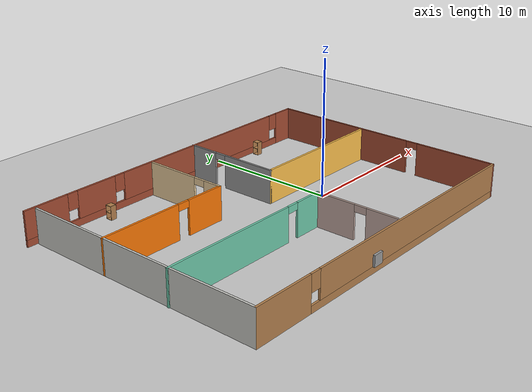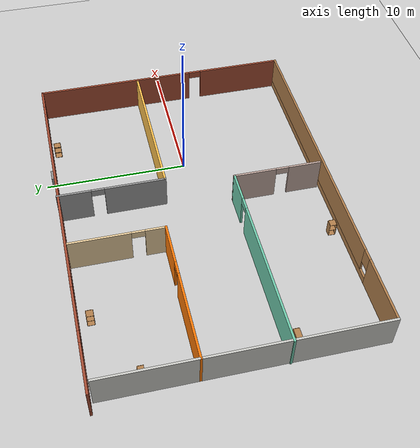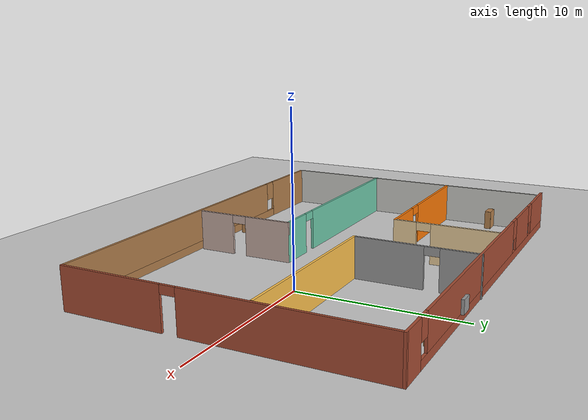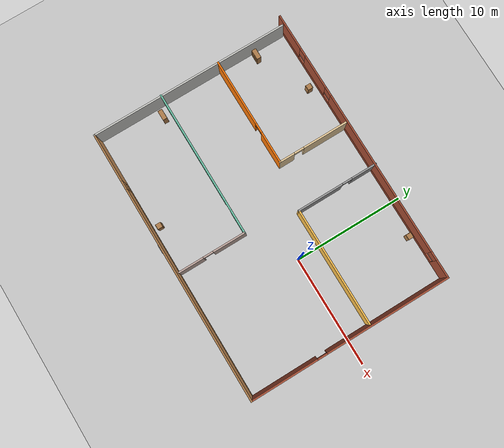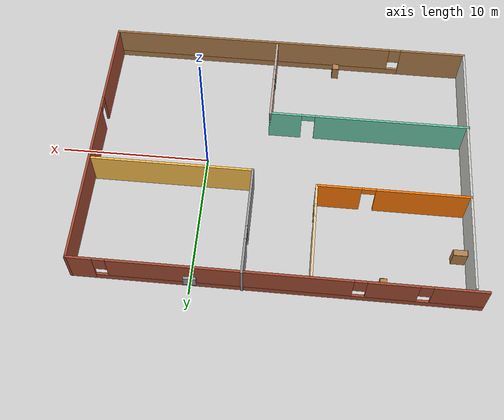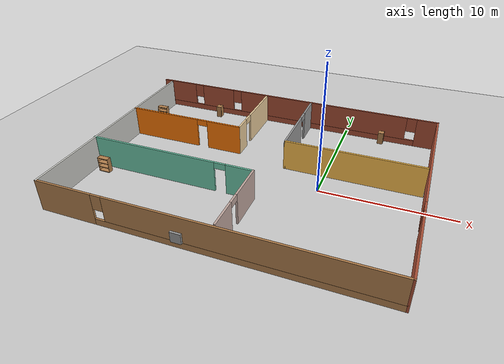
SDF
<sdf version="1.6">
 <world name="default">
  <light name="sun" type="directional">
   <pose>0 0 10 0 -0 0</pose>
   <diffuse>0.8 0.8 0.8 1</diffuse>
   <specular>0.2 0.2 0.2 1</specular>
   <attenuation>
    <range>1000</range>
    <constant>0.9</constant>
    <linear>0.01</linear>
    <quadratic>0.001</quadratic>
   </attenuation>
   <direction>-0.5 0.1 -0.9</direction>
  </light>
  <model name="ground_plane">
   <static>1</static>
   <link name="link">
    <collision name="collision">
     <geometry><plane><normal>0 0 1</normal><size>100 100</size></plane></geometry>
     <surface>
      <contact><collide_bitmask>65535</collide_bitmask></contact>
      <friction><ode><mu>100</mu><mu2>50</mu2></ode></friction>
     </surface>
    </collision>
    <visual name="visual">
     <cast_shadows>0</cast_shadows>
     <geometry><plane><normal>0 0 1</normal><size>100 100</size></plane></geometry>
     <material>
      <script><uri>file://media/materials/scripts/gazebo.material</uri><name>Gazebo/Grey</name></script>
     </material>
    </visual>
   </link>
  </model>
  <gravity>0 0 -9.8</gravity>
  <magnetic_field>6e-06 2.3e-05 -4.2e-05</magnetic_field>
  <atmosphere type="adiabatic"/>
  <physics name="default_physics" default="0" type="ode">
   <max_step_size>0.001</max_step_size>
   <real_time_factor>1</real_time_factor>
   <real_time_update_rate>1000</real_time_update_rate>
  </physics>
  <scene><ambient>0.4 0.4 0.4 1</ambient><background>0.7 0.7 0.7 1</background><shadows>1</shadows></scene>
  <spherical_coordinates>
   <surface_model>EARTH_WGS84</surface_model>
   <latitude_deg>0</latitude_deg>
   <longitude_deg>0</longitude_deg>
   <elevation>0</elevation>
   <heading_deg>0</heading_deg>
  </spherical_coordinates>
  <model name="ZilinWorld.world">
   <pose>-5.3014 0.171729 0 0 -0 0</pose>
   <link name="Wall_1">
    <collision name="Wall_1_Collision">
     <geometry><box><size>18.25 0.15 2.5</size></box></geometry>
     <pose>0 0 1.25 0 -0 0</pose>
    </collision>
    <visual name="Wall_1_Visual">
     <pose>0 0 1.25 0 -0 0</pose>
     <geometry><box><size>18.25 0.15 2.5</size></box></geometry>
     <material>
      <script><uri>file://media/materials/scripts/gazebo.material</uri><name>Gazebo/CeilingTiled</name></script>
      <ambient>1 1 1 1</ambient>
     </material>
     <meta><layer>0</layer></meta>
    </visual>
    <pose>-12.05 -0.152087 0 0 0 -1.5708</pose>
   </link>
   <link name="Wall_11">
    <pose>-7.125 2.63191 0 0 -0 0</pose>
    <visual name="Wall_11_Visual_0">
     <pose>-1.93283 0 1.25 0 -0 0</pose>
     <geometry><box><size>6.13434 0.15 2.5</size></box></geometry>
     <material>
      <script><uri>file://media/materials/scripts/gazebo.material</uri><name>Gazebo/Grey</name></script>
      <ambient>0.996078 0.47451 0.0196078 1</ambient>
     </material>
     <meta><layer>0</layer></meta>
    </visual>
    <collision name="Wall_11_Collision_0">
     <geometry><box><size>6.13434 0.15 2.5</size></box></geometry>
     <pose>-1.93283 0 1.25 0 -0 0</pose>
    </collision>
    <visual name="Wall_11_Visual_1">
     <pose>3.51717 0 1.25 0 -0 0</pose>
     <geometry><box><size>2.96565 0.15 2.5</size></box></geometry>
     <material>
      <script><uri>file://media/materials/scripts/gazebo.material</uri><name>Gazebo/Grey</name></script>
      <ambient>0.996078 0.47451 0.0196078 1</ambient>
     </material>
     <meta><layer>0</layer></meta>
    </visual>
    <collision name="Wall_11_Collision_1">
     <geometry><box><size>2.96565 0.15 2.5</size></box></geometry>
     <pose>3.51717 0 1.25 0 -0 0</pose>
    </collision>
    <visual name="Wall_11_Visual_2">
     <pose>1.58434 0 2.25 0 -0 0</pose>
     <geometry><box><size>0.9 0.15 0.5</size></box></geometry>
     <material>
      <script><uri>file://media/materials/scripts/gazebo.material</uri><name>Gazebo/Grey</name></script>
      <ambient>0.996078 0.47451 0.0196078 1</ambient>
     </material>
     <meta><layer>0</layer></meta>
    </visual>
    <collision name="Wall_11_Collision_2">
     <geometry><box><size>0.9 0.15 0.5</size></box></geometry>
     <pose>1.58434 0 2.25 0 -0 0</pose>
    </collision>
   </link>
   <link name="Wall_12">
    <pose>-2.2 5.80691 0 0 -0 1.5708</pose>
    <visual name="Wall_12_Visual_0">
     <pose>-2.52497 0 1.25 0 -0 0</pose>
     <geometry><box><size>1.45005 0.15 2.5</size></box></geometry>
     <material>
      <script><uri>file://media/materials/scripts/gazebo.material</uri><name>Gazebo/Grey</name></script>
      <ambient>0.921569 0.807843 0.615686 1</ambient>
     </material>
     <meta><layer>0</layer></meta>
    </visual>
    <collision name="Wall_12_Collision_0">
     <geometry><box><size>1.45005 0.15 2.5</size></box></geometry>
     <pose>-2.52497 0 1.25 0 -0 0</pose>
    </collision>
    <visual name="Wall_12_Visual_1">
     <pose>1.17502 0 1.25 0 -0 0</pose>
     <geometry><box><size>4.14995 0.15 2.5</size></box></geometry>
     <material>
      <script><uri>file://media/materials/scripts/gazebo.material</uri><name>Gazebo/Grey</name></script>
      <ambient>0.921569 0.807843 0.615686 1</ambient>
     </material>
     <meta><layer>0</layer></meta>
    </visual>
    <collision name="Wall_12_Collision_1">
     <geometry><box><size>4.14995 0.15 2.5</size></box></geometry>
     <pose>1.17502 0 1.25 0 -0 0</pose>
    </collision>
    <visual name="Wall_12_Visual_2">
     <pose>-1.34995 0 2.25 0 -0 0</pose>
     <geometry><box><size>0.9 0.15 0.5</size></box></geometry>
     <material>
      <script><uri>file://media/materials/scripts/gazebo.material</uri><name>Gazebo/Grey</name></script>
      <ambient>0.921569 0.807843 0.615686 1</ambient>
     </material>
     <meta><layer>0</layer></meta>
    </visual>
    <collision name="Wall_12_Collision_2">
     <geometry><box><size>0.9 0.15 0.5</size></box></geometry>
     <pose>-1.34995 0 2.25 0 -0 0</pose>
    </collision>
   </link>
   <link name="Wall_14">
    <pose>2.00289 5.52709 0 0 0 -1.5708</pose>
    <visual name="Wall_14_Visual_0">
     <pose>-2.56871 0 1.25 0 -0 0</pose>
     <geometry><box><size>2.36258 0.15 2.5</size></box></geometry>
     <material>
      <script><uri>file://media/materials/scripts/gazebo.material</uri><name>Gazebo/Grey</name></script>
      <ambient>1 1 1 1</ambient>
     </material>
     <meta><layer>0</layer></meta>
    </visual>
    <collision name="Wall_14_Collision_0">
     <geometry><box><size>2.36258 0.15 2.5</size></box></geometry>
     <pose>-2.56871 0 1.25 0 -0 0</pose>
    </collision>
    <visual name="Wall_14_Visual_1">
     <pose>1.63129 0 1.25 0 -0 0</pose>
     <geometry><box><size>4.23742 0.15 2.5</size></box></geometry>
     <material>
      <script><uri>file://media/materials/scripts/gazebo.material</uri><name>Gazebo/Grey</name></script>
      <ambient>1 1 1 1</ambient>
     </material>
     <meta><layer>0</layer></meta>
    </visual>
    <collision name="Wall_14_Collision_1">
     <geometry><box><size>4.23742 0.15 2.5</size></box></geometry>
     <pose>1.63129 0 1.25 0 -0 0</pose>
    </collision>
    <visual name="Wall_14_Visual_2">
     <pose>-0.937425 0 2.25 0 -0 0</pose>
     <geometry><box><size>0.9 0.15 0.5</size></box></geometry>
     <material>
      <script><uri>file://media/materials/scripts/gazebo.material</uri><name>Gazebo/Grey</name></script>
      <ambient>1 1 1 1</ambient>
     </material>
     <meta><layer>0</layer></meta>
    </visual>
    <collision name="Wall_14_Collision_2">
     <geometry><box><size>0.9 0.15 0.5</size></box></geometry>
     <pose>-0.937425 0 2.25 0 -0 0</pose>
    </collision>
   </link>
   <link name="Wall_15">
    <collision name="Wall_15_Collision">
     <geometry><box><size>10.75 0.15 2.5</size></box></geometry>
     <pose>0 0 1.25 0 -0 0</pose>
    </collision>
    <visual name="Wall_15_Visual">
     <pose>0 0 1.25 0 -0 0</pose>
     <geometry><box><size>10.75 0.15 2.5</size></box></geometry>
     <material>
      <script><uri>file://media/materials/scripts/gazebo.material</uri><name>Gazebo/Grey</name></script>
      <ambient>1 0.764706 0.305882 1</ambient>
     </material>
     <meta><layer>0</layer></meta>
    </visual>
    <pose>7.30288 1.85209 0 0 -0 0</pose>
   </link>
   <link name="Wall_2">
    <pose>0.375 -9.20209 0 0 -0 0</pose>
    <visual name="Wall_2_Visual_0">
     <pose>-10.2291 0 1.25 0 -0 0</pose>
     <geometry><box><size>4.5418 0.15 2.5</size></box></geometry>
     <material>
      <script><uri>file://media/materials/scripts/gazebo.material</uri><name>Gazebo/Wood</name></script>
      <ambient>1 1 1 1</ambient>
     </material>
     <meta><layer>0</layer></meta>
    </visual>
    <collision name="Wall_2_Collision_0">
     <geometry><box><size>4.5418 0.15 2.5</size></box></geometry>
     <pose>-10.2291 0 1.25 0 -0 0</pose>
    </collision>
    <visual name="Wall_2_Visual_1">
     <pose>2.2709 0 0.25 0 -0 0</pose>
     <geometry><box><size>20.4582 0.15 0.5</size></box></geometry>
     <material>
      <script><uri>file://media/materials/scripts/gazebo.material</uri><name>Gazebo/Wood</name></script>
      <ambient>1 1 1 1</ambient>
     </material>
     <meta><layer>0</layer></meta>
    </visual>
    <collision name="Wall_2_Collision_1">
     <geometry><box><size>20.4582 0.15 0.5</size></box></geometry>
     <pose>2.2709 0 0.25 0 -0 0</pose>
    </collision>
    <visual name="Wall_2_Visual_2">
     <pose>2.6709 0 1.5 0 -0 0</pose>
     <geometry><box><size>19.6582 0.15 2</size></box></geometry>
     <material>
      <script><uri>file://media/materials/scripts/gazebo.material</uri><name>Gazebo/Wood</name></script>
      <ambient>1 1 1 1</ambient>
     </material>
     <meta><layer>0</layer></meta>
    </visual>
    <collision name="Wall_2_Collision_2">
     <geometry><box><size>19.6582 0.15 2</size></box></geometry>
     <pose>2.6709 0 1.5 0 -0 0</pose>
    </collision>
    <visual name="Wall_2_Visual_3">
     <pose>-7.5582 0 1.9 0 -0 0</pose>
     <geometry><box><size>0.8 0.15 1.2</size></box></geometry>
     <material>
      <script><uri>file://media/materials/scripts/gazebo.material</uri><name>Gazebo/Wood</name></script>
      <ambient>1 1 1 1</ambient>
     </material>
     <meta><layer>0</layer></meta>
    </visual>
    <collision name="Wall_2_Collision_3">
     <geometry><box><size>0.8 0.15 1.2</size></box></geometry>
     <pose>-7.5582 0 1.9 0 -0 0</pose>
    </collision>
   </link>
   <link name="Wall_3">
    <pose>12.8 -0.027087 0 0 -0 1.5708</pose>
    <visual name="Wall_3_Visual_0">
     <pose>-6.16683 0 1.25 0 -0 0</pose>
     <geometry><box><size>6.16635 0.15 2.5</size></box></geometry>
     <material>
      <script><uri>file://media/materials/scripts/gazebo.material</uri><name>Gazebo/Bricks</name></script>
      <ambient>1 1 1 1</ambient>
     </material>
     <meta><layer>0</layer></meta>
    </visual>
    <collision name="Wall_3_Collision_0">
     <geometry><box><size>6.16635 0.15 2.5</size></box></geometry>
     <pose>-6.16683 0 1.25 0 -0 0</pose>
    </collision>
    <visual name="Wall_3_Visual_1">
     <pose>3.53317 0 1.25 0 -0 0</pose>
     <geometry><box><size>11.4337 0.15 2.5</size></box></geometry>
     <material>
      <script><uri>file://media/materials/scripts/gazebo.material</uri><name>Gazebo/Bricks</name></script>
      <ambient>1 1 1 1</ambient>
     </material>
     <meta><layer>0</layer></meta>
    </visual>
    <collision name="Wall_3_Collision_1">
     <geometry><box><size>11.4337 0.15 2.5</size></box></geometry>
     <pose>3.53317 0 1.25 0 -0 0</pose>
    </collision>
    <visual name="Wall_3_Visual_2">
     <pose>-2.63365 0 2.25 0 -0 0</pose>
     <geometry><box><size>0.9 0.15 0.5</size></box></geometry>
     <material>
      <script><uri>file://media/materials/scripts/gazebo.material</uri><name>Gazebo/Bricks</name></script>
      <ambient>1 1 1 1</ambient>
     </material>
     <meta><layer>0</layer></meta>
    </visual>
    <collision name="Wall_3_Collision_2">
     <geometry><box><size>0.9 0.15 0.5</size></box></geometry>
     <pose>-2.63365 0 2.25 0 -0 0</pose>
    </collision>
   </link>
   <link name="Wall_4">
    <pose>0 9.14791 0 0 -0 3.14159</pose>
    <visual name="Wall_4_Visual_0">
     <pose>-12.0191 0 1.25 0 -0 0</pose>
     <geometry><box><size>1.71188 0.15 2.5</size></box></geometry>
     <material>
      <script><uri>file://media/materials/scripts/gazebo.material</uri><name>Gazebo/Bricks</name></script>
      <ambient>1 1 1 1</ambient>
     </material>
     <meta><layer>0</layer></meta>
    </visual>
    <collision name="Wall_4_Collision_0">
     <geometry><box><size>1.71188 0.15 2.5</size></box></geometry>
     <pose>-12.0191 0 1.25 0 -0 0</pose>
    </collision>
    <visual name="Wall_4_Visual_1">
     <pose>0.855938 0 0.25 0 -0 0</pose>
     <geometry><box><size>24.0381 0.15 0.5</size></box></geometry>
     <material>
      <script><uri>file://media/materials/scripts/gazebo.material</uri><name>Gazebo/Bricks</name></script>
      <ambient>1 1 1 1</ambient>
     </material>
     <meta><layer>0</layer></meta>
    </visual>
    <collision name="Wall_4_Collision_1">
     <geometry><box><size>24.0381 0.15 0.5</size></box></geometry>
     <pose>0.855938 0 0.25 0 -0 0</pose>
    </collision>
    <visual name="Wall_4_Visual_2">
     <pose>-2.79374 0 1.5 0 -0 0</pose>
     <geometry><box><size>15.1388 0.15 2</size></box></geometry>
     <material>
      <script><uri>file://media/materials/scripts/gazebo.material</uri><name>Gazebo/Bricks</name></script>
      <ambient>1 1 1 1</ambient>
     </material>
     <meta><layer>0</layer></meta>
    </visual>
    <collision name="Wall_4_Collision_2">
     <geometry><box><size>15.1388 0.15 2</size></box></geometry>
     <pose>-2.79374 0 1.5 0 -0 0</pose>
    </collision>
    <visual name="Wall_4_Visual_3">
     <pose>7.15278 0 1.5 0 -0 0</pose>
     <geometry><box><size>3.15428 0.15 2</size></box></geometry>
     <material>
      <script><uri>file://media/materials/scripts/gazebo.material</uri><name>Gazebo/Bricks</name></script>
      <ambient>1 1 1 1</ambient>
     </material>
     <meta><layer>0</layer></meta>
    </visual>
    <collision name="Wall_4_Collision_3">
     <geometry><box><size>3.15428 0.15 2</size></box></geometry>
     <pose>7.15278 0 1.5 0 -0 0</pose>
    </collision>
    <visual name="Wall_4_Visual_4">
     <pose>11.2025 0 1.5 0 -0 0</pose>
     <geometry><box><size>3.34508 0.15 2</size></box></geometry>
     <material>
      <script><uri>file://media/materials/scripts/gazebo.material</uri><name>Gazebo/Bricks</name></script>
      <ambient>1 1 1 1</ambient>
     </material>
     <meta><layer>0</layer></meta>
    </visual>
    <collision name="Wall_4_Collision_4">
     <geometry><box><size>3.34508 0.15 2</size></box></geometry>
     <pose>11.2025 0 1.5 0 -0 0</pose>
    </collision>
    <visual name="Wall_4_Visual_5">
     <pose>-10.7631 0 1.9 0 -0 0</pose>
     <geometry><box><size>0.8 0.15 1.2</size></box></geometry>
     <material>
      <script><uri>file://media/materials/scripts/gazebo.material</uri><name>Gazebo/Bricks</name></script>
      <ambient>1 1 1 1</ambient>
     </material>
     <meta><layer>0</layer></meta>
    </visual>
    <collision name="Wall_4_Collision_5">
     <geometry><box><size>0.8 0.15 1.2</size></box></geometry>
     <pose>-10.7631 0 1.9 0 -0 0</pose>
    </collision>
    <visual name="Wall_4_Visual_6">
     <pose>5.17565 0 1.9 0 -0 0</pose>
     <geometry><box><size>0.8 0.15 1.2</size></box></geometry>
     <material>
      <script><uri>file://media/materials/scripts/gazebo.material</uri><name>Gazebo/Bricks</name></script>
      <ambient>1 1 1 1</ambient>
     </material>
     <meta><layer>0</layer></meta>
    </visual>
    <collision name="Wall_4_Collision_6">
     <geometry><box><size>0.8 0.15 1.2</size></box></geometry>
     <pose>5.17565 0 1.9 0 -0 0</pose>
    </collision>
    <visual name="Wall_4_Visual_7">
     <pose>9.12992 0 1.9 0 -0 0</pose>
     <geometry><box><size>0.8 0.15 1.2</size></box></geometry>
     <material>
      <script><uri>file://media/materials/scripts/gazebo.material</uri><name>Gazebo/Bricks</name></script>
      <ambient>1 1 1 1</ambient>
     </material>
     <meta><layer>0</layer></meta>
    </visual>
    <collision name="Wall_4_Collision_7">
     <geometry><box><size>0.8 0.15 1.2</size></box></geometry>
     <pose>9.12992 0 1.9 0 -0 0</pose>
    </collision>
   </link>
   <link name="Wall_6">
    <pose>-5.43584 -2.84324 0 0 -0 0</pose>
    <visual name="Wall_6_Visual_0">
     <pose>-1.5536 0 1.25 0 -0 0</pose>
     <geometry><box><size>10.3928 0.15 2.5</size></box></geometry>
     <material>
      <script><uri>file://media/materials/scripts/gazebo.material</uri><name>Gazebo/Grey</name></script>
      <ambient>0.435294 0.796078 0.67451 1</ambient>
     </material>
     <meta><layer>0</layer></meta>
    </visual>
    <collision name="Wall_6_Collision_0">
     <geometry><box><size>10.3928 0.15 2.5</size></box></geometry>
     <pose>-1.5536 0 1.25 0 -0 0</pose>
    </collision>
    <visual name="Wall_6_Visual_1">
     <pose>5.6464 0 1.25 0 -0 0</pose>
     <geometry><box><size>2.20721 0.15 2.5</size></box></geometry>
     <material>
      <script><uri>file://media/materials/scripts/gazebo.material</uri><name>Gazebo/Grey</name></script>
      <ambient>0.435294 0.796078 0.67451 1</ambient>
     </material>
     <meta><layer>0</layer></meta>
    </visual>
    <collision name="Wall_6_Collision_1">
     <geometry><box><size>2.20721 0.15 2.5</size></box></geometry>
     <pose>5.6464 0 1.25 0 -0 0</pose>
    </collision>
    <visual name="Wall_6_Visual_2">
     <pose>4.09279 0 2.25 0 -0 0</pose>
     <geometry><box><size>0.9 0.15 0.5</size></box></geometry>
     <material>
      <script><uri>file://media/materials/scripts/gazebo.material</uri><name>Gazebo/Grey</name></script>
      <ambient>0.435294 0.796078 0.67451 1</ambient>
     </material>
     <meta><layer>0</layer></meta>
    </visual>
    <collision name="Wall_6_Collision_2">
     <geometry><box><size>0.9 0.15 0.5</size></box></geometry>
     <pose>4.09279 0 2.25 0 -0 0</pose>
    </collision>
   </link>
   <link name="Wall_9">
    <pose>1.23916 -5.89324 0 0 0 -1.5708</pose>
    <visual name="Wall_9_Visual_0">
     <pose>-1.60912 0 1.25 0 -0 0</pose>
     <geometry><box><size>3.03176 0.15 2.5</size></box></geometry>
     <material>
      <script><uri>file://media/materials/scripts/gazebo.material</uri><name>Gazebo/Grey</name></script>
      <ambient>0.760784 0.662745 0.627451 1</ambient>
     </material>
     <meta><layer>0</layer></meta>
    </visual>
    <collision name="Wall_9_Collision_0">
     <geometry><box><size>3.03176 0.15 2.5</size></box></geometry>
     <pose>-1.60912 0 1.25 0 -0 0</pose>
    </collision>
    <visual name="Wall_9_Visual_1">
     <pose>1.96588 0 1.25 0 -0 0</pose>
     <geometry><box><size>2.31824 0.15 2.5</size></box></geometry>
     <material>
      <script><uri>file://media/materials/scripts/gazebo.material</uri><name>Gazebo/Grey</name></script>
      <ambient>0.760784 0.662745 0.627451 1</ambient>
     </material>
     <meta><layer>0</layer></meta>
    </visual>
    <collision name="Wall_9_Collision_1">
     <geometry><box><size>2.31824 0.15 2.5</size></box></geometry>
     <pose>1.96588 0 1.25 0 -0 0</pose>
    </collision>
    <visual name="Wall_9_Visual_2">
     <pose>0.35676 0 2.25 0 -0 0</pose>
     <geometry><box><size>0.9 0.15 0.5</size></box></geometry>
     <material>
      <script><uri>file://media/materials/scripts/gazebo.material</uri><name>Gazebo/Grey</name></script>
      <ambient>0.760784 0.662745 0.627451 1</ambient>
     </material>
     <meta><layer>0</layer></meta>
    </visual>
    <collision name="Wall_9_Collision_2">
     <geometry><box><size>0.9 0.15 0.5</size></box></geometry>
     <pose>0.35676 0 2.25 0 -0 0</pose>
    </collision>
   </link>
   <link name="Window_2">
    <collision name="Window_2_Collision">
     <geometry><box><size>0.8 0.17 0.8</size></box></geometry>
     <pose>0 0 0.4 0 -0 0</pose>
    </collision>
    <visual name="Window_2_Visual">
     <pose>0 0 0.4 0 -0 0</pose>
     <geometry><box><size>0.8 0.17 0.8</size></box></geometry>
     <material>
      <script><uri>file://media/materials/scripts/gazebo.material</uri><name>Gazebo/Grey</name></script>
     </material>
    </visual>
    <pose>5.22714 9.32376 0.5 0 -0 0</pose>
   </link>
   <link name="Window_4">
    <collision name="Window_4_Collision">
     <geometry><box><size>0.8 0.17 0.8</size></box></geometry>
     <pose>0 0 0.4 0 -0 0</pose>
    </collision>
    <visual name="Window_4_Visual">
     <pose>0 0 0.4 0 -0 0</pose>
     <geometry><box><size>0.8 0.17 0.8</size></box></geometry>
     <material>
      <script><uri>file://media/materials/scripts/gazebo.material</uri><name>Gazebo/Grey</name></script>
     </material>
    </visual>
    <pose>-1.34304 -9.35259 0.5 0 -0 0</pose>
   </link>
   <static>1</static>
  </model>
  <model name="bookshelf">
   <static>1</static>
   <link name="link">
    <inertial><mass>1</mass></inertial>
    <collision name="back">
     <pose>0 0.005 0.6 0 -0 0</pose>
     <geometry><box><size>0.9 0.01 1.2</size></box></geometry>
    </collision>
    <visual name="visual1">
     <pose>0 0.005 0.6 0 -0 0</pose>
     <geometry><box><size>0.9 0.01 1.2</size></box></geometry>
     <material>
      <script><uri>file://media/materials/scripts/gazebo.material</uri><name>Gazebo/Wood</name></script>
     </material>
    </visual>
    <collision name="left_side">
     <pose>0.45 -0.195 0.6 0 -0 0</pose>
     <geometry><box><size>0.02 0.4 1.2</size></box></geometry>
    </collision>
    <visual name="visual2">
     <pose>0.45 -0.195 0.6 0 -0 0</pose>
     <geometry><box><size>0.02 0.4 1.2</size></box></geometry>
     <material>
      <script><uri>file://media/materials/scripts/gazebo.material</uri><name>Gazebo/Wood</name></script>
     </material>
    </visual>
    <collision name="right_side">
     <pose>-0.45 -0.195 0.6 0 -0 0</pose>
     <geometry><box><size>0.02 0.4 1.2</size></box></geometry>
    </collision>
    <visual name="visual3">
     <pose>-0.45 -0.195 0.6 0 -0 0</pose>
     <geometry><box><size>0.02 0.4 1.2</size></box></geometry>
     <material>
      <script><uri>file://media/materials/scripts/gazebo.material</uri><name>Gazebo/Wood</name></script>
     </material>
    </visual>
    <collision name="bottom">
     <pose>0 -0.195 0.03 0 -0 0</pose>
     <geometry><box><size>0.88 0.4 0.06</size></box></geometry>
    </collision>
    <visual name="visual4">
     <pose>0 -0.195 0.03 0 -0 0</pose>
     <geometry><box><size>0.88 0.4 0.06</size></box></geometry>
     <material>
      <script><uri>file://media/materials/scripts/gazebo.material</uri><name>Gazebo/Wood</name></script>
     </material>
    </visual>
    <collision name="top">
     <pose>0 -0.195 1.19 0 -0 0</pose>
     <geometry><box><size>0.88 0.4 0.02</size></box></geometry>
    </collision>
    <visual name="visual5">
     <pose>0 -0.195 1.19 0 -0 0</pose>
     <geometry><box><size>0.88 0.4 0.02</size></box></geometry>
     <material>
      <script><uri>file://media/materials/scripts/gazebo.material</uri><name>Gazebo/Wood</name></script>
     </material>
    </visual>
    <collision name="low_shelf">
     <pose>0 -0.195 0.43 0 -0 0</pose>
     <geometry><box><size>0.88 0.4 0.02</size></box></geometry>
    </collision>
    <visual name="visual6">
     <pose>0 -0.195 0.43 0 -0 0</pose>
     <geometry><box><size>0.88 0.4 0.02</size></box></geometry>
     <material>
      <script><uri>file://media/materials/scripts/gazebo.material</uri><name>Gazebo/Wood</name></script>
     </material>
    </visual>
    <collision name="high_shelf">
     <pose>0 -0.195 0.8 0 -0 0</pose>
     <geometry><box><size>0.88 0.4 0.02</size></box></geometry>
    </collision>
    <visual name="visual7">
     <pose>0 -0.195 0.8 0 -0 0</pose>
     <geometry><box><size>0.88 0.4 0.02</size></box></geometry>
     <material>
      <script><uri>file://media/materials/scripts/gazebo.material</uri><name>Gazebo/Wood</name></script>
     </material>
    </visual>
   </link>
   <pose>-16.3411 -3.19083 0 0 -0 0</pose>
  </model>
  <model name="cabinet">
   <static>1</static>
   <link name="cabinet_bottom_plate">
    <inertial>
     <pose>0 0 -1 0 -0 0</pose>
     <inertia><ixx>2.05</ixx><ixy>0</ixy><ixz>0</ixz><iyy>2.05</iyy><iyz>0</iyz><izz>2.05</izz></inertia>
     <mass>25</mass>
    </inertial>
    <collision name="cabinet_bottom_plate_geom">
     <pose>0 0 0.01 0 -0 0</pose>
     <geometry><box><size>0.45 0.45 0.02</size></box></geometry>
    </collision>
    <visual name="cabinet_bottom_plate_geom_visual">
     <pose>0 0 0.01 0 -0 0</pose>
     <geometry><box><size>0.45 0.45 0.02</size></box></geometry>
     <material>
      <script><uri>file://media/materials/scripts/gazebo.material</uri><name>Gazebo/Wood</name></script>
     </material>
    </visual>
    <collision name="cabinet_bottom_plate_geom_cabinet_back_plate">
     <pose>0.235 0 0.51 0 -0 0</pose>
     <geometry><box><size>0.02 0.45 1.02</size></box></geometry>
    </collision>
    <visual name="cabinet_bottom_plate_geom_cabinet_back_plate_visual">
     <pose>0.235 0 0.51 0 -0 0</pose>
     <geometry><box><size>0.02 0.45 1.02</size></box></geometry>
     <material>
      <script><uri>file://media/materials/scripts/gazebo.material</uri><name>Gazebo/Wood</name></script>
     </material>
    </visual>
    <collision name="cabinet_bottom_plate_geom_cabinet_left_plate">
     <pose>0 0.235 0.51 0 -0 0</pose>
     <geometry><box><size>0.45 0.02 1.02</size></box></geometry>
    </collision>
    <visual name="cabinet_bottom_plate_geom_cabinet_left_plate_visual">
     <pose>0 0.235 0.51 0 -0 0</pose>
     <geometry><box><size>0.45 0.02 1.02</size></box></geometry>
     <material>
      <script><uri>file://media/materials/scripts/gazebo.material</uri><name>Gazebo/Wood</name></script>
     </material>
    </visual>
    <collision name="cabinet_bottom_plate_geom_cabinet_middle_plate">
     <pose>0 0 0.51 0 -0 0</pose>
     <geometry><box><size>0.45 0.45 0.02</size></box></geometry>
    </collision>
    <visual name="cabinet_bottom_plate_geom_cabinet_middle_plate_visual">
     <pose>0 0 0.51 0 -0 0</pose>
     <geometry><box><size>0.45 0.45 0.02</size></box></geometry>
     <material>
      <script><uri>file://media/materials/scripts/gazebo.material</uri><name>Gazebo/Wood</name></script>
     </material>
    </visual>
    <collision name="cabinet_bottom_plate_geom_cabinet_right_plate">
     <pose>0 -0.235 0.51 0 -0 0</pose>
     <geometry><box><size>0.45 0.02 1.02</size></box></geometry>
    </collision>
    <visual name="cabinet_bottom_plate_geom_cabinet_right_plate_visual">
     <pose>0 -0.235 0.51 0 -0 0</pose>
     <geometry><box><size>0.45 0.02 1.02</size></box></geometry>
     <material>
      <script><uri>file://media/materials/scripts/gazebo.material</uri><name>Gazebo/Wood</name></script>
     </material>
    </visual>
    <collision name="cabinet_bottom_plate_geom_cabinet_top_plate">
     <pose>0 0 1.01 0 -0 0</pose>
     <geometry><box><size>0.45 0.45 0.02</size></box></geometry>
    </collision>
    <visual name="cabinet_bottom_plate_geom_cabinet_top_plate_visual">
     <pose>0 0 1.01 0 -0 0</pose>
     <geometry><box><size>0.45 0.45 0.02</size></box></geometry>
     <material>
      <script><uri>file://media/materials/scripts/gazebo.material</uri><name>Gazebo/Wood</name></script>
     </material>
    </visual>
   </link>
   <pose>3.15867 8.85102 0 0 -0 0</pose>
  </model>
  <model name="cabinet_0">
   <static>1</static>
   <link name="cabinet_bottom_plate">
    <inertial>
     <pose>0 0 -1 0 -0 0</pose>
     <inertia><ixx>2.05</ixx><ixy>0</ixy><ixz>0</ixz><iyy>2.05</iyy><iyz>0</iyz><izz>2.05</izz></inertia>
     <mass>25</mass>
    </inertial>
    <collision name="cabinet_bottom_plate_geom">
     <pose>0 0 0.01 0 -0 0</pose>
     <geometry><box><size>0.45 0.45 0.02</size></box></geometry>
    </collision>
    <visual name="cabinet_bottom_plate_geom_visual">
     <pose>0 0 0.01 0 -0 0</pose>
     <geometry><box><size>0.45 0.45 0.02</size></box></geometry>
     <material>
      <script><uri>file://media/materials/scripts/gazebo.material</uri><name>Gazebo/Wood</name></script>
     </material>
    </visual>
    <collision name="cabinet_bottom_plate_geom_cabinet_back_plate">
     <pose>0.235 0 0.51 0 -0 0</pose>
     <geometry><box><size>0.02 0.45 1.02</size></box></geometry>
    </collision>
    <visual name="cabinet_bottom_plate_geom_cabinet_back_plate_visual">
     <pose>0.235 0 0.51 0 -0 0</pose>
     <geometry><box><size>0.02 0.45 1.02</size></box></geometry>
     <material>
      <script><uri>file://media/materials/scripts/gazebo.material</uri><name>Gazebo/Wood</name></script>
     </material>
    </visual>
    <collision name="cabinet_bottom_plate_geom_cabinet_left_plate">
     <pose>0 0.235 0.51 0 -0 0</pose>
     <geometry><box><size>0.45 0.02 1.02</size></box></geometry>
    </collision>
    <visual name="cabinet_bottom_plate_geom_cabinet_left_plate_visual">
     <pose>0 0.235 0.51 0 -0 0</pose>
     <geometry><box><size>0.45 0.02 1.02</size></box></geometry>
     <material>
      <script><uri>file://media/materials/scripts/gazebo.material</uri><name>Gazebo/Wood</name></script>
     </material>
    </visual>
    <collision name="cabinet_bottom_plate_geom_cabinet_middle_plate">
     <pose>0 0 0.51 0 -0 0</pose>
     <geometry><box><size>0.45 0.45 0.02</size></box></geometry>
    </collision>
    <visual name="cabinet_bottom_plate_geom_cabinet_middle_plate_visual">
     <pose>0 0 0.51 0 -0 0</pose>
     <geometry><box><size>0.45 0.45 0.02</size></box></geometry>
     <material>
      <script><uri>file://media/materials/scripts/gazebo.material</uri><name>Gazebo/Wood</name></script>
     </material>
    </visual>
    <collision name="cabinet_bottom_plate_geom_cabinet_right_plate">
     <pose>0 -0.235 0.51 0 -0 0</pose>
     <geometry><box><size>0.45 0.02 1.02</size></box></geometry>
    </collision>
    <visual name="cabinet_bottom_plate_geom_cabinet_right_plate_visual">
     <pose>0 -0.235 0.51 0 -0 0</pose>
     <geometry><box><size>0.45 0.02 1.02</size></box></geometry>
     <material>
      <script><uri>file://media/materials/scripts/gazebo.material</uri><name>Gazebo/Wood</name></script>
     </material>
    </visual>
    <collision name="cabinet_bottom_plate_geom_cabinet_top_plate">
     <pose>0 0 1.01 0 -0 0</pose>
     <geometry><box><size>0.45 0.45 0.02</size></box></geometry>
    </collision>
    <visual name="cabinet_bottom_plate_geom_cabinet_top_plate_visual">
     <pose>0 0 1.01 0 -0 0</pose>
     <geometry><box><size>0.45 0.45 0.02</size></box></geometry>
     <material>
      <script><uri>file://media/materials/scripts/gazebo.material</uri><name>Gazebo/Wood</name></script>
     </material>
    </visual>
   </link>
   <pose>-8.38702 -8.38534 0 0 -0 0</pose>
  </model>
  <model name="cabinet_1">
   <static>1</static>
   <link name="cabinet_bottom_plate">
    <inertial>
     <pose>0 0 -1 0 -0 0</pose>
     <inertia><ixx>2.05</ixx><ixy>0</ixy><ixz>0</ixz><iyy>2.05</iyy><iyz>0</iyz><izz>2.05</izz></inertia>
     <mass>25</mass>
    </inertial>
    <collision name="cabinet_bottom_plate_geom">
     <pose>0 0 0.01 0 -0 0</pose>
     <geometry><box><size>0.45 0.45 0.02</size></box></geometry>
    </collision>
    <visual name="cabinet_bottom_plate_geom_visual">
     <pose>0 0 0.01 0 -0 0</pose>
     <geometry><box><size>0.45 0.45 0.02</size></box></geometry>
     <material>
      <script><uri>file://media/materials/scripts/gazebo.material</uri><name>Gazebo/Wood</name></script>
     </material>
    </visual>
    <collision name="cabinet_bottom_plate_geom_cabinet_back_plate">
     <pose>0.235 0 0.51 0 -0 0</pose>
     <geometry><box><size>0.02 0.45 1.02</size></box></geometry>
    </collision>
    <visual name="cabinet_bottom_plate_geom_cabinet_back_plate_visual">
     <pose>0.235 0 0.51 0 -0 0</pose>
     <geometry><box><size>0.02 0.45 1.02</size></box></geometry>
     <material>
      <script><uri>file://media/materials/scripts/gazebo.material</uri><name>Gazebo/Wood</name></script>
     </material>
    </visual>
    <collision name="cabinet_bottom_plate_geom_cabinet_left_plate">
     <pose>0 0.235 0.51 0 -0 0</pose>
     <geometry><box><size>0.45 0.02 1.02</size></box></geometry>
    </collision>
    <visual name="cabinet_bottom_plate_geom_cabinet_left_plate_visual">
     <pose>0 0.235 0.51 0 -0 0</pose>
     <geometry><box><size>0.45 0.02 1.02</size></box></geometry>
     <material>
      <script><uri>file://media/materials/scripts/gazebo.material</uri><name>Gazebo/Wood</name></script>
     </material>
    </visual>
    <collision name="cabinet_bottom_plate_geom_cabinet_middle_plate">
     <pose>0 0 0.51 0 -0 0</pose>
     <geometry><box><size>0.45 0.45 0.02</size></box></geometry>
    </collision>
    <visual name="cabinet_bottom_plate_geom_cabinet_middle_plate_visual">
     <pose>0 0 0.51 0 -0 0</pose>
     <geometry><box><size>0.45 0.45 0.02</size></box></geometry>
     <material>
      <script><uri>file://media/materials/scripts/gazebo.material</uri><name>Gazebo/Wood</name></script>
     </material>
    </visual>
    <collision name="cabinet_bottom_plate_geom_cabinet_right_plate">
     <pose>0 -0.235 0.51 0 -0 0</pose>
     <geometry><box><size>0.45 0.02 1.02</size></box></geometry>
    </collision>
    <visual name="cabinet_bottom_plate_geom_cabinet_right_plate_visual">
     <pose>0 -0.235 0.51 0 -0 0</pose>
     <geometry><box><size>0.45 0.02 1.02</size></box></geometry>
     <material>
      <script><uri>file://media/materials/scripts/gazebo.material</uri><name>Gazebo/Wood</name></script>
     </material>
    </visual>
    <collision name="cabinet_bottom_plate_geom_cabinet_top_plate">
     <pose>0 0 1.01 0 -0 0</pose>
     <geometry><box><size>0.45 0.45 0.02</size></box></geometry>
    </collision>
    <visual name="cabinet_bottom_plate_geom_cabinet_top_plate_visual">
     <pose>0 0 1.01 0 -0 0</pose>
     <geometry><box><size>0.45 0.45 0.02</size></box></geometry>
     <material>
      <script><uri>file://media/materials/scripts/gazebo.material</uri><name>Gazebo/Wood</name></script>
     </material>
    </visual>
   </link>
   <pose>-12.0018 8.5059 0 0 -0 0</pose>
  </model>
  <model name="bookshelf_0">
   <static>1</static>
   <link name="link">
    <inertial><mass>1</mass></inertial>
    <collision name="back">
     <pose>0 0.005 0.6 0 -0 0</pose>
     <geometry><box><size>0.9 0.01 1.2</size></box></geometry>
    </collision>
    <visual name="visual1">
     <pose>0 0.005 0.6 0 -0 0</pose>
     <geometry><box><size>0.9 0.01 1.2</size></box></geometry>
     <material>
      <script><uri>file://media/materials/scripts/gazebo.material</uri><name>Gazebo/Wood</name></script>
     </material>
    </visual>
    <collision name="left_side">
     <pose>0.45 -0.195 0.6 0 -0 0</pose>
     <geometry><box><size>0.02 0.4 1.2</size></box></geometry>
    </collision>
    <visual name="visual2">
     <pose>0.45 -0.195 0.6 0 -0 0</pose>
     <geometry><box><size>0.02 0.4 1.2</size></box></geometry>
     <material>
      <script><uri>file://media/materials/scripts/gazebo.material</uri><name>Gazebo/Wood</name></script>
     </material>
    </visual>
    <collision name="right_side">
     <pose>-0.45 -0.195 0.6 0 -0 0</pose>
     <geometry><box><size>0.02 0.4 1.2</size></box></geometry>
    </collision>
    <visual name="visual3">
     <pose>-0.45 -0.195 0.6 0 -0 0</pose>
     <geometry><box><size>0.02 0.4 1.2</size></box></geometry>
     <material>
      <script><uri>file://media/materials/scripts/gazebo.material</uri><name>Gazebo/Wood</name></script>
     </material>
    </visual>
    <collision name="bottom">
     <pose>0 -0.195 0.03 0 -0 0</pose>
     <geometry><box><size>0.88 0.4 0.06</size></box></geometry>
    </collision>
    <visual name="visual4">
     <pose>0 -0.195 0.03 0 -0 0</pose>
     <geometry><box><size>0.88 0.4 0.06</size></box></geometry>
     <material>
      <script><uri>file://media/materials/scripts/gazebo.material</uri><name>Gazebo/Wood</name></script>
     </material>
    </visual>
    <collision name="top">
     <pose>0 -0.195 1.19 0 -0 0</pose>
     <geometry><box><size>0.88 0.4 0.02</size></box></geometry>
    </collision>
    <visual name="visual5">
     <pose>0 -0.195 1.19 0 -0 0</pose>
     <geometry><box><size>0.88 0.4 0.02</size></box></geometry>
     <material>
      <script><uri>file://media/materials/scripts/gazebo.material</uri><name>Gazebo/Wood</name></script>
     </material>
    </visual>
    <collision name="low_shelf">
     <pose>0 -0.195 0.43 0 -0 0</pose>
     <geometry><box><size>0.88 0.4 0.02</size></box></geometry>
    </collision>
    <visual name="visual6">
     <pose>0 -0.195 0.43 0 -0 0</pose>
     <geometry><box><size>0.88 0.4 0.02</size></box></geometry>
     <material>
      <script><uri>file://media/materials/scripts/gazebo.material</uri><name>Gazebo/Wood</name></script>
     </material>
    </visual>
    <collision name="high_shelf">
     <pose>0 -0.195 0.8 0 -0 0</pose>
     <geometry><box><size>0.88 0.4 0.02</size></box></geometry>
    </collision>
    <visual name="visual7">
     <pose>0 -0.195 0.8 0 -0 0</pose>
     <geometry><box><size>0.88 0.4 0.02</size></box></geometry>
     <material>
      <script><uri>file://media/materials/scripts/gazebo.material</uri><name>Gazebo/Wood</name></script>
     </material>
    </visual>
   </link>
   <pose>-16.7651 6.34379 0 0 -0 0</pose>
  </model>
 </world>
</sdf>
